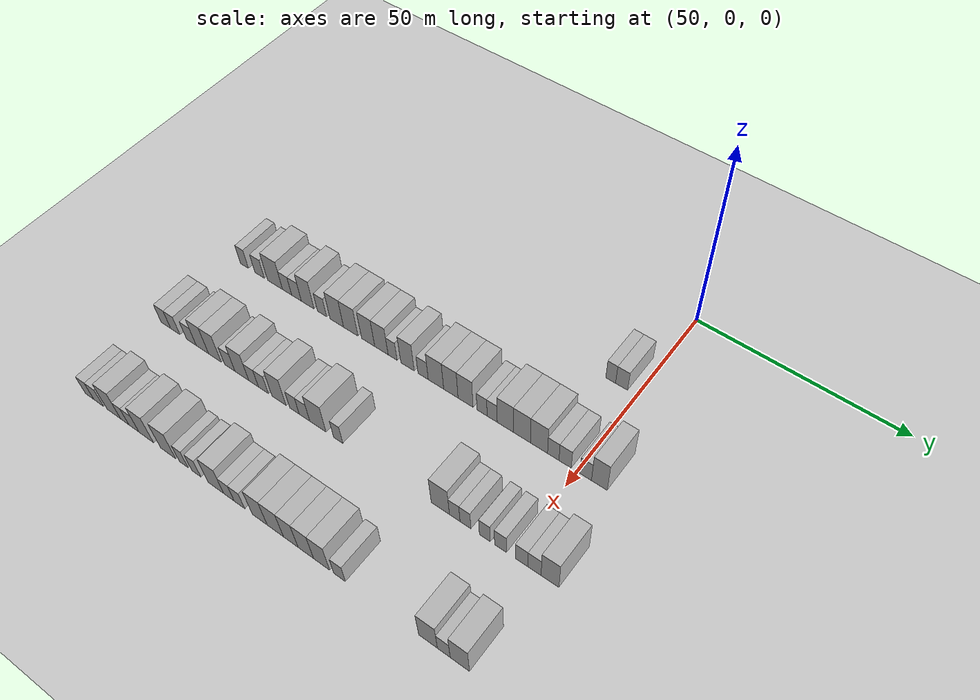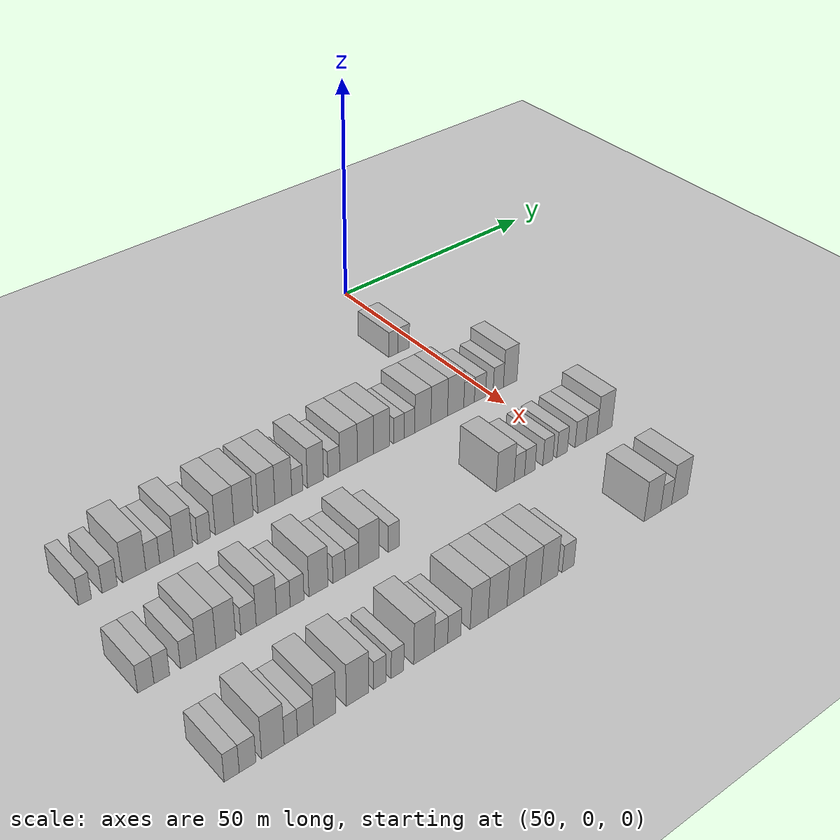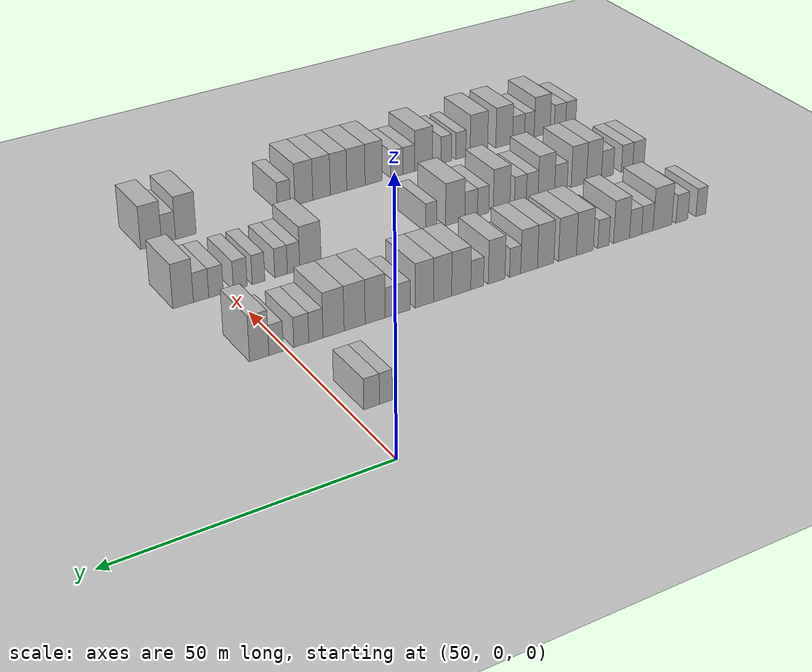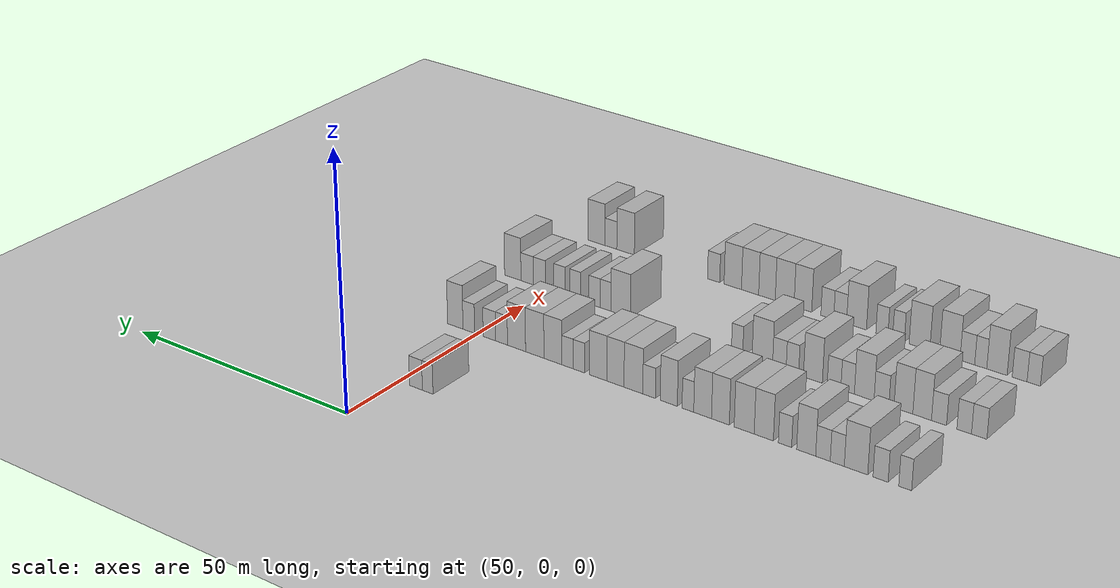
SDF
<sdf version="1.6">
 <world name="default">
  <include>
   <name>ground_plane_2</name>
   <uri>model://HANNAS_ground_plane</uri>
   <pose>100 0 0  0 0 0</pose>
  </include>
  <model name="building_488">
   <static>1</static>
   <pose>69.0000 -6.4480 0 0.000000 0.000000 0.000000</pose>
   <link name="link">
    <pose>0 0 3.00 0 0 0</pose>
    <collision name="collision"><geometry><box><size>10.0000 2.4102 6.0000</size></box></geometry></collision>
    <visual name="visual">
     <cast_shadows>0</cast_shadows>
     <geometry><box><size>10.0000 2.4102 6.0000</size></box></geometry>
     <material>
      <script>
       <uri>model://HANNAS_wall/materials/scripts</uri>
       <uri>model://HANNAS_wall/materials/textures</uri>
       <name>vrc/HANNAS_wall</name>
      </script>
     </material>
    </visual>
   </link>
  </model>
  <model name="building_489">
   <static>1</static>
   <pose>69.0000 -3.7724 0 0.000000 0.000000 0.000000</pose>
   <link name="link">
    <pose>0 0 3.00 0 0 0</pose>
    <collision name="collision"><geometry><box><size>10.0000 2.9410 6.0000</size></box></geometry></collision>
    <visual name="visual">
     <cast_shadows>0</cast_shadows>
     <geometry><box><size>10.0000 2.9410 6.0000</size></box></geometry>
     <material>
      <script>
       <uri>model://HANNAS_wall/materials/scripts</uri>
       <uri>model://HANNAS_wall/materials/textures</uri>
       <name>vrc/HANNAS_wall</name>
      </script>
     </material>
    </visual>
   </link>
  </model>
  <model name="building_650">
   <static>1</static>
   <pose>91.0000 -89.6249 0 0.000000 0.000000 0.000000</pose>
   <link name="link">
    <pose>0 0 3.00 0 0 0</pose>
    <collision name="collision"><geometry><box><size>10.0000 2.4065 6.0000</size></box></geometry></collision>
    <visual name="visual">
     <cast_shadows>0</cast_shadows>
     <geometry><box><size>10.0000 2.4065 6.0000</size></box></geometry>
     <material>
      <script>
       <uri>model://HANNAS_wall/materials/scripts</uri>
       <uri>model://HANNAS_wall/materials/textures</uri>
       <name>vrc/HANNAS_wall</name>
      </script>
     </material>
    </visual>
   </link>
  </model>
  <model name="building_651">
   <static>1</static>
   <pose>91.0000 -84.9941 0 0.000000 0.000000 0.000000</pose>
   <link name="link">
    <pose>0 0 3.00 0 0 0</pose>
    <collision name="collision"><geometry><box><size>10.0000 2.8552 6.0000</size></box></geometry></collision>
    <visual name="visual">
     <cast_shadows>0</cast_shadows>
     <geometry><box><size>10.0000 2.8552 6.0000</size></box></geometry>
     <material>
      <script>
       <uri>model://HANNAS_wall/materials/scripts</uri>
       <uri>model://HANNAS_wall/materials/textures</uri>
       <name>vrc/HANNAS_wall</name>
      </script>
     </material>
    </visual>
   </link>
  </model>
  <model name="building_652">
   <static>1</static>
   <pose>91.0000 -80.3249 0 0.000000 0.000000 0.000000</pose>
   <link name="link">
    <pose>0 0 4.50 0 0 0</pose>
    <collision name="collision"><geometry><box><size>10.0000 4.4831 9.0000</size></box></geometry></collision>
    <visual name="visual">
     <cast_shadows>0</cast_shadows>
     <geometry><box><size>10.0000 4.4831 9.0000</size></box></geometry>
     <material>
      <script>
       <uri>model://HANNAS_wall/materials/scripts</uri>
       <uri>model://HANNAS_wall/materials/textures</uri>
       <name>vrc/HANNAS_wall</name>
      </script>
     </material>
    </visual>
   </link>
  </model>
  <model name="building_653">
   <static>1</static>
   <pose>91.0000 -76.7258 0 0.000000 0.000000 0.000000</pose>
   <link name="link">
    <pose>0 0 3.00 0 0 0</pose>
    <collision name="collision"><geometry><box><size>10.0000 2.7152 6.0000</size></box></geometry></collision>
    <visual name="visual">
     <cast_shadows>0</cast_shadows>
     <geometry><box><size>10.0000 2.7152 6.0000</size></box></geometry>
     <material>
      <script>
       <uri>model://HANNAS_wall/materials/scripts</uri>
       <uri>model://HANNAS_wall/materials/textures</uri>
       <name>vrc/HANNAS_wall</name>
      </script>
     </material>
    </visual>
   </link>
  </model>
  <model name="building_654">
   <static>1</static>
   <pose>91.0000 -73.9480 0 0.000000 0.000000 0.000000</pose>
   <link name="link">
    <pose>0 0 3.00 0 0 0</pose>
    <collision name="collision"><geometry><box><size>10.0000 2.8404 6.0000</size></box></geometry></collision>
    <visual name="visual">
     <cast_shadows>0</cast_shadows>
     <geometry><box><size>10.0000 2.8404 6.0000</size></box></geometry>
     <material>
      <script>
       <uri>model://HANNAS_wall/materials/scripts</uri>
       <uri>model://HANNAS_wall/materials/textures</uri>
       <name>vrc/HANNAS_wall</name>
      </script>
     </material>
    </visual>
   </link>
  </model>
  <model name="building_655">
   <static>1</static>
   <pose>91.0000 -70.6602 0 0.000000 0.000000 0.000000</pose>
   <link name="link">
    <pose>0 0 4.50 0 0 0</pose>
    <collision name="collision"><geometry><box><size>10.0000 3.7353 9.0000</size></box></geometry></collision>
    <visual name="visual">
     <cast_shadows>0</cast_shadows>
     <geometry><box><size>10.0000 3.7353 9.0000</size></box></geometry>
     <material>
      <script>
       <uri>model://HANNAS_wall/materials/scripts</uri>
       <uri>model://HANNAS_wall/materials/textures</uri>
       <name>vrc/HANNAS_wall</name>
      </script>
     </material>
    </visual>
   </link>
  </model>
  <model name="building_656">
   <static>1</static>
   <pose>91.0000 -66.4795 0 0.000000 0.000000 0.000000</pose>
   <link name="link">
    <pose>0 0 3.00 0 0 0</pose>
    <collision name="collision"><geometry><box><size>10.0000 2.6261 6.0000</size></box></geometry></collision>
    <visual name="visual">
     <cast_shadows>0</cast_shadows>
     <geometry><box><size>10.0000 2.6261 6.0000</size></box></geometry>
     <material>
      <script>
       <uri>model://HANNAS_wall/materials/scripts</uri>
       <uri>model://HANNAS_wall/materials/textures</uri>
       <name>vrc/HANNAS_wall</name>
      </script>
     </material>
    </visual>
   </link>
  </model>
  <model name="building_657">
   <static>1</static>
   <pose>91.0000 -62.2388 0 0.000000 0.000000 0.000000</pose>
   <link name="link">
    <pose>0 0 4.50 0 0 0</pose>
    <collision name="collision"><geometry><box><size>10.0000 3.8552 9.0000</size></box></geometry></collision>
    <visual name="visual">
     <cast_shadows>0</cast_shadows>
     <geometry><box><size>10.0000 3.8552 9.0000</size></box></geometry>
     <material>
      <script>
       <uri>model://HANNAS_wall/materials/scripts</uri>
       <uri>model://HANNAS_wall/materials/textures</uri>
       <name>vrc/HANNAS_wall</name>
      </script>
     </material>
    </visual>
   </link>
  </model>
  <model name="building_658">
   <static>1</static>
   <pose>91.0000 -58.2820 0 0.000000 0.000000 0.000000</pose>
   <link name="link">
    <pose>0 0 4.50 0 0 0</pose>
    <collision name="collision"><geometry><box><size>10.0000 4.0585 9.0000</size></box></geometry></collision>
    <visual name="visual">
     <cast_shadows>0</cast_shadows>
     <geometry><box><size>10.0000 4.0585 9.0000</size></box></geometry>
     <material>
      <script>
       <uri>model://HANNAS_wall/materials/scripts</uri>
       <uri>model://HANNAS_wall/materials/textures</uri>
       <name>vrc/HANNAS_wall</name>
      </script>
     </material>
    </visual>
   </link>
  </model>
  <model name="building_659">
   <static>1</static>
   <pose>91.0000 -53.4203 0 0.000000 0.000000 0.000000</pose>
   <link name="link">
    <pose>0 0 4.50 0 0 0</pose>
    <collision name="collision"><geometry><box><size>10.0000 3.6650 9.0000</size></box></geometry></collision>
    <visual name="visual">
     <cast_shadows>0</cast_shadows>
     <geometry><box><size>10.0000 3.6650 9.0000</size></box></geometry>
     <material>
      <script>
       <uri>model://HANNAS_wall/materials/scripts</uri>
       <uri>model://HANNAS_wall/materials/textures</uri>
       <name>vrc/HANNAS_wall</name>
      </script>
     </material>
    </visual>
   </link>
  </model>
  <model name="building_660">
   <static>1</static>
   <pose>91.0000 -49.7429 0 0.000000 0.000000 0.000000</pose>
   <link name="link">
    <pose>0 0 4.50 0 0 0</pose>
    <collision name="collision"><geometry><box><size>10.0000 3.6897 9.0000</size></box></geometry></collision>
    <visual name="visual">
     <cast_shadows>0</cast_shadows>
     <geometry><box><size>10.0000 3.6897 9.0000</size></box></geometry>
     <material>
      <script>
       <uri>model://HANNAS_wall/materials/scripts</uri>
       <uri>model://HANNAS_wall/materials/textures</uri>
       <name>vrc/HANNAS_wall</name>
      </script>
     </material>
    </visual>
   </link>
  </model>
  <model name="building_661">
   <static>1</static>
   <pose>91.0000 -46.6797 0 0.000000 0.000000 0.000000</pose>
   <link name="link">
    <pose>0 0 3.00 0 0 0</pose>
    <collision name="collision"><geometry><box><size>10.0000 2.4366 6.0000</size></box></geometry></collision>
    <visual name="visual">
     <cast_shadows>0</cast_shadows>
     <geometry><box><size>10.0000 2.4366 6.0000</size></box></geometry>
     <material>
      <script>
       <uri>model://HANNAS_wall/materials/scripts</uri>
       <uri>model://HANNAS_wall/materials/textures</uri>
       <name>vrc/HANNAS_wall</name>
      </script>
     </material>
    </visual>
   </link>
  </model>
  <model name="building_662">
   <static>1</static>
   <pose>91.0000 -42.6531 0 0.000000 0.000000 0.000000</pose>
   <link name="link">
    <pose>0 0 4.50 0 0 0</pose>
    <collision name="collision"><geometry><box><size>10.0000 3.6165 9.0000</size></box></geometry></collision>
    <visual name="visual">
     <cast_shadows>0</cast_shadows>
     <geometry><box><size>10.0000 3.6165 9.0000</size></box></geometry>
     <material>
      <script>
       <uri>model://HANNAS_wall/materials/scripts</uri>
       <uri>model://HANNAS_wall/materials/textures</uri>
       <name>vrc/HANNAS_wall</name>
      </script>
     </material>
    </visual>
   </link>
  </model>
  <model name="building_663">
   <static>1</static>
   <pose>91.0000 -38.4862 0 0.000000 0.000000 0.000000</pose>
   <link name="link">
    <pose>0 0 3.00 0 0 0</pose>
    <collision name="collision"><geometry><box><size>10.0000 2.7173 6.0000</size></box></geometry></collision>
    <visual name="visual">
     <cast_shadows>0</cast_shadows>
     <geometry><box><size>10.0000 2.7173 6.0000</size></box></geometry>
     <material>
      <script>
       <uri>model://HANNAS_wall/materials/scripts</uri>
       <uri>model://HANNAS_wall/materials/textures</uri>
       <name>vrc/HANNAS_wall</name>
      </script>
     </material>
    </visual>
   </link>
  </model>
  <model name="building_664">
   <static>1</static>
   <pose>91.0000 -35.1050 0 0.000000 0.000000 0.000000</pose>
   <link name="link">
    <pose>0 0 4.50 0 0 0</pose>
    <collision name="collision"><geometry><box><size>10.0000 4.0452 9.0000</size></box></geometry></collision>
    <visual name="visual">
     <cast_shadows>0</cast_shadows>
     <geometry><box><size>10.0000 4.0452 9.0000</size></box></geometry>
     <material>
      <script>
       <uri>model://HANNAS_wall/materials/scripts</uri>
       <uri>model://HANNAS_wall/materials/textures</uri>
       <name>vrc/HANNAS_wall</name>
      </script>
     </material>
    </visual>
   </link>
  </model>
  <model name="building_665">
   <static>1</static>
   <pose>91.0000 -31.2090 0 0.000000 0.000000 0.000000</pose>
   <link name="link">
    <pose>0 0 4.50 0 0 0</pose>
    <collision name="collision"><geometry><box><size>10.0000 3.7467 9.0000</size></box></geometry></collision>
    <visual name="visual">
     <cast_shadows>0</cast_shadows>
     <geometry><box><size>10.0000 3.7467 9.0000</size></box></geometry>
     <material>
      <script>
       <uri>model://HANNAS_wall/materials/scripts</uri>
       <uri>model://HANNAS_wall/materials/textures</uri>
       <name>vrc/HANNAS_wall</name>
      </script>
     </material>
    </visual>
   </link>
  </model>
  <model name="building_666">
   <static>1</static>
   <pose>91.0000 -27.4064 0 0.000000 0.000000 0.000000</pose>
   <link name="link">
    <pose>0 0 4.50 0 0 0</pose>
    <collision name="collision"><geometry><box><size>10.0000 3.8585 9.0000</size></box></geometry></collision>
    <visual name="visual">
     <cast_shadows>0</cast_shadows>
     <geometry><box><size>10.0000 3.8585 9.0000</size></box></geometry>
     <material>
      <script>
       <uri>model://HANNAS_wall/materials/scripts</uri>
       <uri>model://HANNAS_wall/materials/textures</uri>
       <name>vrc/HANNAS_wall</name>
      </script>
     </material>
    </visual>
   </link>
  </model>
  <model name="building_667">
   <static>1</static>
   <pose>91.0000 -23.1904 0 0.000000 0.000000 0.000000</pose>
   <link name="link">
    <pose>0 0 3.00 0 0 0</pose>
    <collision name="collision"><geometry><box><size>10.0000 2.5735 6.0000</size></box></geometry></collision>
    <visual name="visual">
     <cast_shadows>0</cast_shadows>
     <geometry><box><size>10.0000 2.5735 6.0000</size></box></geometry>
     <material>
      <script>
       <uri>model://HANNAS_wall/materials/scripts</uri>
       <uri>model://HANNAS_wall/materials/textures</uri>
       <name>vrc/HANNAS_wall</name>
      </script>
     </material>
    </visual>
   </link>
  </model>
  <model name="building_668">
   <static>1</static>
   <pose>91.0000 -20.6383 0 0.000000 0.000000 0.000000</pose>
   <link name="link">
    <pose>0 0 3.00 0 0 0</pose>
    <collision name="collision"><geometry><box><size>10.0000 2.5307 6.0000</size></box></geometry></collision>
    <visual name="visual">
     <cast_shadows>0</cast_shadows>
     <geometry><box><size>10.0000 2.5307 6.0000</size></box></geometry>
     <material>
      <script>
       <uri>model://HANNAS_wall/materials/scripts</uri>
       <uri>model://HANNAS_wall/materials/textures</uri>
       <name>vrc/HANNAS_wall</name>
      </script>
     </material>
    </visual>
   </link>
  </model>
  <model name="building_669">
   <static>1</static>
   <pose>91.0000 -17.3683 0 0.000000 0.000000 0.000000</pose>
   <link name="link">
    <pose>0 0 4.50 0 0 0</pose>
    <collision name="collision"><geometry><box><size>10.0000 4.0093 9.0000</size></box></geometry></collision>
    <visual name="visual">
     <cast_shadows>0</cast_shadows>
     <geometry><box><size>10.0000 4.0093 9.0000</size></box></geometry>
     <material>
      <script>
       <uri>model://HANNAS_wall/materials/scripts</uri>
       <uri>model://HANNAS_wall/materials/textures</uri>
       <name>vrc/HANNAS_wall</name>
      </script>
     </material>
    </visual>
   </link>
  </model>
  <model name="building_670">
   <static>1</static>
   <pose>91.0000 -13.2743 0 0.000000 0.000000 0.000000</pose>
   <link name="link">
    <pose>0 0 4.50 0 0 0</pose>
    <collision name="collision"><geometry><box><size>10.0000 4.1787 9.0000</size></box></geometry></collision>
    <visual name="visual">
     <cast_shadows>0</cast_shadows>
     <geometry><box><size>10.0000 4.1787 9.0000</size></box></geometry>
     <material>
      <script>
       <uri>model://HANNAS_wall/materials/scripts</uri>
       <uri>model://HANNAS_wall/materials/textures</uri>
       <name>vrc/HANNAS_wall</name>
      </script>
     </material>
    </visual>
   </link>
  </model>
  <model name="building_671">
   <static>1</static>
   <pose>91.0000 -9.1041 0 0.000000 0.000000 0.000000</pose>
   <link name="link">
    <pose>0 0 4.50 0 0 0</pose>
    <collision name="collision"><geometry><box><size>10.0000 4.1616 9.0000</size></box></geometry></collision>
    <visual name="visual">
     <cast_shadows>0</cast_shadows>
     <geometry><box><size>10.0000 4.1616 9.0000</size></box></geometry>
     <material>
      <script>
       <uri>model://HANNAS_wall/materials/scripts</uri>
       <uri>model://HANNAS_wall/materials/textures</uri>
       <name>vrc/HANNAS_wall</name>
      </script>
     </material>
    </visual>
   </link>
  </model>
  <model name="building_672">
   <static>1</static>
   <pose>91.0000 -5.6515 0 0.000000 0.000000 0.000000</pose>
   <link name="link">
    <pose>0 0 3.00 0 0 0</pose>
    <collision name="collision"><geometry><box><size>10.0000 2.7437 6.0000</size></box></geometry></collision>
    <visual name="visual">
     <cast_shadows>0</cast_shadows>
     <geometry><box><size>10.0000 2.7437 6.0000</size></box></geometry>
     <material>
      <script>
       <uri>model://HANNAS_wall/materials/scripts</uri>
       <uri>model://HANNAS_wall/materials/textures</uri>
       <name>vrc/HANNAS_wall</name>
      </script>
     </material>
    </visual>
   </link>
  </model>
  <model name="building_673">
   <static>1</static>
   <pose>91.0000 -2.8227 0 0.000000 0.000000 0.000000</pose>
   <link name="link">
    <pose>0 0 3.00 0 0 0</pose>
    <collision name="collision"><geometry><box><size>10.0000 2.9139 6.0000</size></box></geometry></collision>
    <visual name="visual">
     <cast_shadows>0</cast_shadows>
     <geometry><box><size>10.0000 2.9139 6.0000</size></box></geometry>
     <material>
      <script>
       <uri>model://HANNAS_wall/materials/scripts</uri>
       <uri>model://HANNAS_wall/materials/textures</uri>
       <name>vrc/HANNAS_wall</name>
      </script>
     </material>
    </visual>
   </link>
  </model>
  <model name="building_674">
   <static>1</static>
   <pose>91.0000 2.0038 0 0.000000 0.000000 0.000000</pose>
   <link name="link">
    <pose>0 0 3.00 0 0 0</pose>
    <collision name="collision"><geometry><box><size>10.0000 2.7391 6.0000</size></box></geometry></collision>
    <visual name="visual">
     <cast_shadows>0</cast_shadows>
     <geometry><box><size>10.0000 2.7391 6.0000</size></box></geometry>
     <material>
      <script>
       <uri>model://HANNAS_wall/materials/scripts</uri>
       <uri>model://HANNAS_wall/materials/textures</uri>
       <name>vrc/HANNAS_wall</name>
      </script>
     </material>
    </visual>
   </link>
  </model>
  <model name="building_675">
   <static>1</static>
   <pose>91.0000 5.2040 0 0.000000 0.000000 0.000000</pose>
   <link name="link">
    <pose>0 0 4.50 0 0 0</pose>
    <collision name="collision"><geometry><box><size>10.0000 3.6614 9.0000</size></box></geometry></collision>
    <visual name="visual">
     <cast_shadows>0</cast_shadows>
     <geometry><box><size>10.0000 3.6614 9.0000</size></box></geometry>
     <material>
      <script>
       <uri>model://HANNAS_wall/materials/scripts</uri>
       <uri>model://HANNAS_wall/materials/textures</uri>
       <name>vrc/HANNAS_wall</name>
      </script>
     </material>
    </visual>
   </link>
  </model>
  <model name="building_840">
   <static>1</static>
   <pose>113.0000 -91.5246 0 0.000000 0.000000 0.000000</pose>
   <link name="link">
    <pose>0 0 3.00 0 0 0</pose>
    <collision name="collision"><geometry><box><size>10.0000 2.9326 6.0000</size></box></geometry></collision>
    <visual name="visual">
     <cast_shadows>0</cast_shadows>
     <geometry><box><size>10.0000 2.9326 6.0000</size></box></geometry>
     <material>
      <script>
       <uri>model://HANNAS_wall/materials/scripts</uri>
       <uri>model://HANNAS_wall/materials/textures</uri>
       <name>vrc/HANNAS_wall</name>
      </script>
     </material>
    </visual>
   </link>
  </model>
  <model name="building_841">
   <static>1</static>
   <pose>113.0000 -88.6587 0 0.000000 0.000000 0.000000</pose>
   <link name="link">
    <pose>0 0 3.00 0 0 0</pose>
    <collision name="collision"><geometry><box><size>10.0000 2.7993 6.0000</size></box></geometry></collision>
    <visual name="visual">
     <cast_shadows>0</cast_shadows>
     <geometry><box><size>10.0000 2.7993 6.0000</size></box></geometry>
     <material>
      <script>
       <uri>model://HANNAS_wall/materials/scripts</uri>
       <uri>model://HANNAS_wall/materials/textures</uri>
       <name>vrc/HANNAS_wall</name>
      </script>
     </material>
    </visual>
   </link>
  </model>
  <model name="building_842">
   <static>1</static>
   <pose>113.0000 -83.7989 0 0.000000 0.000000 0.000000</pose>
   <link name="link">
    <pose>0 0 3.00 0 0 0</pose>
    <collision name="collision"><geometry><box><size>10.0000 2.9202 6.0000</size></box></geometry></collision>
    <visual name="visual">
     <cast_shadows>0</cast_shadows>
     <geometry><box><size>10.0000 2.9202 6.0000</size></box></geometry>
     <material>
      <script>
       <uri>model://HANNAS_wall/materials/scripts</uri>
       <uri>model://HANNAS_wall/materials/textures</uri>
       <name>vrc/HANNAS_wall</name>
      </script>
     </material>
    </visual>
   </link>
  </model>
  <model name="building_843">
   <static>1</static>
   <pose>113.0000 -80.5098 0 0.000000 0.000000 0.000000</pose>
   <link name="link">
    <pose>0 0 4.50 0 0 0</pose>
    <collision name="collision"><geometry><box><size>10.0000 3.6580 9.0000</size></box></geometry></collision>
    <visual name="visual">
     <cast_shadows>0</cast_shadows>
     <geometry><box><size>10.0000 3.6580 9.0000</size></box></geometry>
     <material>
      <script>
       <uri>model://HANNAS_wall/materials/scripts</uri>
       <uri>model://HANNAS_wall/materials/textures</uri>
       <name>vrc/HANNAS_wall</name>
      </script>
     </material>
    </visual>
   </link>
  </model>
  <model name="building_844">
   <static>1</static>
   <pose>113.0000 -76.8177 0 0.000000 0.000000 0.000000</pose>
   <link name="link">
    <pose>0 0 4.50 0 0 0</pose>
    <collision name="collision"><geometry><box><size>10.0000 3.7262 9.0000</size></box></geometry></collision>
    <visual name="visual">
     <cast_shadows>0</cast_shadows>
     <geometry><box><size>10.0000 3.7262 9.0000</size></box></geometry>
     <material>
      <script>
       <uri>model://HANNAS_wall/materials/scripts</uri>
       <uri>model://HANNAS_wall/materials/textures</uri>
       <name>vrc/HANNAS_wall</name>
      </script>
     </material>
    </visual>
   </link>
  </model>
  <model name="building_845">
   <static>1</static>
   <pose>113.0000 -72.4673 0 0.000000 0.000000 0.000000</pose>
   <link name="link">
    <pose>0 0 3.00 0 0 0</pose>
    <collision name="collision"><geometry><box><size>10.0000 2.9744 6.0000</size></box></geometry></collision>
    <visual name="visual">
     <cast_shadows>0</cast_shadows>
     <geometry><box><size>10.0000 2.9744 6.0000</size></box></geometry>
     <material>
      <script>
       <uri>model://HANNAS_wall/materials/scripts</uri>
       <uri>model://HANNAS_wall/materials/textures</uri>
       <name>vrc/HANNAS_wall</name>
      </script>
     </material>
    </visual>
   </link>
  </model>
  <model name="building_846">
   <static>1</static>
   <pose>113.0000 -68.9987 0 0.000000 0.000000 0.000000</pose>
   <link name="link">
    <pose>0 0 4.50 0 0 0</pose>
    <collision name="collision"><geometry><box><size>10.0000 3.9628 9.0000</size></box></geometry></collision>
    <visual name="visual">
     <cast_shadows>0</cast_shadows>
     <geometry><box><size>10.0000 3.9628 9.0000</size></box></geometry>
     <material>
      <script>
       <uri>model://HANNAS_wall/materials/scripts</uri>
       <uri>model://HANNAS_wall/materials/textures</uri>
       <name>vrc/HANNAS_wall</name>
      </script>
     </material>
    </visual>
   </link>
  </model>
  <model name="building_847">
   <static>1</static>
   <pose>113.0000 -65.6395 0 0.000000 0.000000 0.000000</pose>
   <link name="link">
    <pose>0 0 3.00 0 0 0</pose>
    <collision name="collision"><geometry><box><size>10.0000 2.7556 6.0000</size></box></geometry></collision>
    <visual name="visual">
     <cast_shadows>0</cast_shadows>
     <geometry><box><size>10.0000 2.7556 6.0000</size></box></geometry>
     <material>
      <script>
       <uri>model://HANNAS_wall/materials/scripts</uri>
       <uri>model://HANNAS_wall/materials/textures</uri>
       <name>vrc/HANNAS_wall</name>
      </script>
     </material>
    </visual>
   </link>
  </model>
  <model name="building_848">
   <static>1</static>
   <pose>113.0000 -62.8694 0 0.000000 0.000000 0.000000</pose>
   <link name="link">
    <pose>0 0 3.00 0 0 0</pose>
    <collision name="collision"><geometry><box><size>10.0000 2.7847 6.0000</size></box></geometry></collision>
    <visual name="visual">
     <cast_shadows>0</cast_shadows>
     <geometry><box><size>10.0000 2.7847 6.0000</size></box></geometry>
     <material>
      <script>
       <uri>model://HANNAS_wall/materials/scripts</uri>
       <uri>model://HANNAS_wall/materials/textures</uri>
       <name>vrc/HANNAS_wall</name>
      </script>
     </material>
    </visual>
   </link>
  </model>
  <model name="building_849">
   <static>1</static>
   <pose>113.0000 -58.5174 0 0.000000 0.000000 0.000000</pose>
   <link name="link">
    <pose>0 0 4.50 0 0 0</pose>
    <collision name="collision"><geometry><box><size>10.0000 3.9193 9.0000</size></box></geometry></collision>
    <visual name="visual">
     <cast_shadows>0</cast_shadows>
     <geometry><box><size>10.0000 3.9193 9.0000</size></box></geometry>
     <material>
      <script>
       <uri>model://HANNAS_wall/materials/scripts</uri>
       <uri>model://HANNAS_wall/materials/textures</uri>
       <name>vrc/HANNAS_wall</name>
      </script>
     </material>
    </visual>
   </link>
  </model>
  <model name="building_850">
   <static>1</static>
   <pose>113.0000 -54.2472 0 0.000000 0.000000 0.000000</pose>
   <link name="link">
    <pose>0 0 3.00 0 0 0</pose>
    <collision name="collision"><geometry><box><size>10.0000 2.6211 6.0000</size></box></geometry></collision>
    <visual name="visual">
     <cast_shadows>0</cast_shadows>
     <geometry><box><size>10.0000 2.6211 6.0000</size></box></geometry>
     <material>
      <script>
       <uri>model://HANNAS_wall/materials/scripts</uri>
       <uri>model://HANNAS_wall/materials/textures</uri>
       <name>vrc/HANNAS_wall</name>
      </script>
     </material>
    </visual>
   </link>
  </model>
  <model name="building_851">
   <static>1</static>
   <pose>113.0000 -51.5075 0 0.000000 0.000000 0.000000</pose>
   <link name="link">
    <pose>0 0 3.00 0 0 0</pose>
    <collision name="collision"><geometry><box><size>10.0000 2.8582 6.0000</size></box></geometry></collision>
    <visual name="visual">
     <cast_shadows>0</cast_shadows>
     <geometry><box><size>10.0000 2.8582 6.0000</size></box></geometry>
     <material>
      <script>
       <uri>model://HANNAS_wall/materials/scripts</uri>
       <uri>model://HANNAS_wall/materials/textures</uri>
       <name>vrc/HANNAS_wall</name>
      </script>
     </material>
    </visual>
   </link>
  </model>
  <model name="building_852">
   <static>1</static>
   <pose>113.0000 -47.8989 0 0.000000 0.000000 0.000000</pose>
   <link name="link">
    <pose>0 0 4.50 0 0 0</pose>
    <collision name="collision"><geometry><box><size>10.0000 4.3590 9.0000</size></box></geometry></collision>
    <visual name="visual">
     <cast_shadows>0</cast_shadows>
     <geometry><box><size>10.0000 4.3590 9.0000</size></box></geometry>
     <material>
      <script>
       <uri>model://HANNAS_wall/materials/scripts</uri>
       <uri>model://HANNAS_wall/materials/textures</uri>
       <name>vrc/HANNAS_wall</name>
      </script>
     </material>
    </visual>
   </link>
  </model>
  <model name="building_853">
   <static>1</static>
   <pose>113.0000 -42.4967 0 0.000000 0.000000 0.000000</pose>
   <link name="link">
    <pose>0 0 3.00 0 0 0</pose>
    <collision name="collision"><geometry><box><size>10.0000 2.4454 6.0000</size></box></geometry></collision>
    <visual name="visual">
     <cast_shadows>0</cast_shadows>
     <geometry><box><size>10.0000 2.4454 6.0000</size></box></geometry>
     <material>
      <script>
       <uri>model://HANNAS_wall/materials/scripts</uri>
       <uri>model://HANNAS_wall/materials/textures</uri>
       <name>vrc/HANNAS_wall</name>
      </script>
     </material>
    </visual>
   </link>
  </model>
  <model name="building_854">
   <static>1</static>
   <pose>113.0000 -16.6333 0 0.000000 0.000000 0.000000</pose>
   <link name="link">
    <pose>0 0 4.50 0 0 0</pose>
    <collision name="collision"><geometry><box><size>10.0000 4.4271 9.0000</size></box></geometry></collision>
    <visual name="visual">
     <cast_shadows>0</cast_shadows>
     <geometry><box><size>10.0000 4.4271 9.0000</size></box></geometry>
     <material>
      <script>
       <uri>model://HANNAS_wall/materials/scripts</uri>
       <uri>model://HANNAS_wall/materials/textures</uri>
       <name>vrc/HANNAS_wall</name>
      </script>
     </material>
    </visual>
   </link>
  </model>
  <model name="building_855">
   <static>1</static>
   <pose>113.0000 -13.1447 0 0.000000 0.000000 0.000000</pose>
   <link name="link">
    <pose>0 0 3.00 0 0 0</pose>
    <collision name="collision"><geometry><box><size>10.0000 2.5502 6.0000</size></box></geometry></collision>
    <visual name="visual">
     <cast_shadows>0</cast_shadows>
     <geometry><box><size>10.0000 2.5502 6.0000</size></box></geometry>
     <material>
      <script>
       <uri>model://HANNAS_wall/materials/scripts</uri>
       <uri>model://HANNAS_wall/materials/textures</uri>
       <name>vrc/HANNAS_wall</name>
      </script>
     </material>
    </visual>
   </link>
  </model>
  <model name="building_856">
   <static>1</static>
   <pose>113.0000 -10.5804 0 0.000000 0.000000 0.000000</pose>
   <link name="link">
    <pose>0 0 3.00 0 0 0</pose>
    <collision name="collision"><geometry><box><size>10.0000 2.5785 6.0000</size></box></geometry></collision>
    <visual name="visual">
     <cast_shadows>0</cast_shadows>
     <geometry><box><size>10.0000 2.5785 6.0000</size></box></geometry>
     <material>
      <script>
       <uri>model://HANNAS_wall/materials/scripts</uri>
       <uri>model://HANNAS_wall/materials/textures</uri>
       <name>vrc/HANNAS_wall</name>
      </script>
     </material>
    </visual>
   </link>
  </model>
  <model name="building_857">
   <static>1</static>
   <pose>113.0000 -6.0092 0 0.000000 0.000000 0.000000</pose>
   <link name="link">
    <pose>0 0 3.00 0 0 0</pose>
    <collision name="collision"><geometry><box><size>10.0000 2.5640 6.0000</size></box></geometry></collision>
    <visual name="visual">
     <cast_shadows>0</cast_shadows>
     <geometry><box><size>10.0000 2.5640 6.0000</size></box></geometry>
     <material>
      <script>
       <uri>model://HANNAS_wall/materials/scripts</uri>
       <uri>model://HANNAS_wall/materials/textures</uri>
       <name>vrc/HANNAS_wall</name>
      </script>
     </material>
    </visual>
   </link>
  </model>
  <model name="building_858">
   <static>1</static>
   <pose>113.0000 -2.3519 0 0.000000 0.000000 0.000000</pose>
   <link name="link">
    <pose>0 0 3.00 0 0 0</pose>
    <collision name="collision"><geometry><box><size>10.0000 2.7504 6.0000</size></box></geometry></collision>
    <visual name="visual">
     <cast_shadows>0</cast_shadows>
     <geometry><box><size>10.0000 2.7504 6.0000</size></box></geometry>
     <material>
      <script>
       <uri>model://HANNAS_wall/materials/scripts</uri>
       <uri>model://HANNAS_wall/materials/textures</uri>
       <name>vrc/HANNAS_wall</name>
      </script>
     </material>
    </visual>
   </link>
  </model>
  <model name="building_859">
   <static>1</static>
   <pose>113.0000 2.4577 0 0.000000 0.000000 0.000000</pose>
   <link name="link">
    <pose>0 0 3.00 0 0 0</pose>
    <collision name="collision"><geometry><box><size>10.0000 2.8689 6.0000</size></box></geometry></collision>
    <visual name="visual">
     <cast_shadows>0</cast_shadows>
     <geometry><box><size>10.0000 2.8689 6.0000</size></box></geometry>
     <material>
      <script>
       <uri>model://HANNAS_wall/materials/scripts</uri>
       <uri>model://HANNAS_wall/materials/textures</uri>
       <name>vrc/HANNAS_wall</name>
      </script>
     </material>
    </visual>
   </link>
  </model>
  <model name="building_860">
   <static>1</static>
   <pose>113.0000 5.3865 0 0.000000 0.000000 0.000000</pose>
   <link name="link">
    <pose>0 0 3.00 0 0 0</pose>
    <collision name="collision"><geometry><box><size>10.0000 2.9887 6.0000</size></box></geometry></collision>
    <visual name="visual">
     <cast_shadows>0</cast_shadows>
     <geometry><box><size>10.0000 2.9887 6.0000</size></box></geometry>
     <material>
      <script>
       <uri>model://HANNAS_wall/materials/scripts</uri>
       <uri>model://HANNAS_wall/materials/textures</uri>
       <name>vrc/HANNAS_wall</name>
      </script>
     </material>
    </visual>
   </link>
  </model>
  <model name="building_861">
   <static>1</static>
   <pose>113.0000 8.8742 0 0.000000 0.000000 0.000000</pose>
   <link name="link">
    <pose>0 0 4.50 0 0 0</pose>
    <collision name="collision"><geometry><box><size>10.0000 3.9867 9.0000</size></box></geometry></collision>
    <visual name="visual">
     <cast_shadows>0</cast_shadows>
     <geometry><box><size>10.0000 3.9867 9.0000</size></box></geometry>
     <material>
      <script>
       <uri>model://HANNAS_wall/materials/scripts</uri>
       <uri>model://HANNAS_wall/materials/textures</uri>
       <name>vrc/HANNAS_wall</name>
      </script>
     </material>
    </visual>
   </link>
  </model>
  <model name="building_1031">
   <static>1</static>
   <pose>135.0000 -90.6435 0 0.000000 0.000000 0.000000</pose>
   <link name="link">
    <pose>0 0 3.00 0 0 0</pose>
    <collision name="collision"><geometry><box><size>10.0000 2.6156 6.0000</size></box></geometry></collision>
    <visual name="visual">
     <cast_shadows>0</cast_shadows>
     <geometry><box><size>10.0000 2.6156 6.0000</size></box></geometry>
     <material>
      <script>
       <uri>model://HANNAS_wall/materials/scripts</uri>
       <uri>model://HANNAS_wall/materials/textures</uri>
       <name>vrc/HANNAS_wall</name>
      </script>
     </material>
    </visual>
   </link>
  </model>
  <model name="building_1032">
   <static>1</static>
   <pose>135.0000 -87.8767 0 0.000000 0.000000 0.000000</pose>
   <link name="link">
    <pose>0 0 3.00 0 0 0</pose>
    <collision name="collision"><geometry><box><size>10.0000 2.9180 6.0000</size></box></geometry></collision>
    <visual name="visual">
     <cast_shadows>0</cast_shadows>
     <geometry><box><size>10.0000 2.9180 6.0000</size></box></geometry>
     <material>
      <script>
       <uri>model://HANNAS_wall/materials/scripts</uri>
       <uri>model://HANNAS_wall/materials/textures</uri>
       <name>vrc/HANNAS_wall</name>
      </script>
     </material>
    </visual>
   </link>
  </model>
  <model name="building_1033">
   <static>1</static>
   <pose>135.0000 -83.3951 0 0.000000 0.000000 0.000000</pose>
   <link name="link">
    <pose>0 0 4.50 0 0 0</pose>
    <collision name="collision"><geometry><box><size>10.0000 4.0452 9.0000</size></box></geometry></collision>
    <visual name="visual">
     <cast_shadows>0</cast_shadows>
     <geometry><box><size>10.0000 4.0452 9.0000</size></box></geometry>
     <material>
      <script>
       <uri>model://HANNAS_wall/materials/scripts</uri>
       <uri>model://HANNAS_wall/materials/textures</uri>
       <name>vrc/HANNAS_wall</name>
      </script>
     </material>
    </visual>
   </link>
  </model>
  <model name="building_1034">
   <static>1</static>
   <pose>135.0000 -80.1602 0 0.000000 0.000000 0.000000</pose>
   <link name="link">
    <pose>0 0 3.00 0 0 0</pose>
    <collision name="collision"><geometry><box><size>10.0000 2.4247 6.0000</size></box></geometry></collision>
    <visual name="visual">
     <cast_shadows>0</cast_shadows>
     <geometry><box><size>10.0000 2.4247 6.0000</size></box></geometry>
     <material>
      <script>
       <uri>model://HANNAS_wall/materials/scripts</uri>
       <uri>model://HANNAS_wall/materials/textures</uri>
       <name>vrc/HANNAS_wall</name>
      </script>
     </material>
    </visual>
   </link>
  </model>
  <model name="building_1035">
   <static>1</static>
   <pose>135.0000 -77.4684 0 0.000000 0.000000 0.000000</pose>
   <link name="link">
    <pose>0 0 3.00 0 0 0</pose>
    <collision name="collision"><geometry><box><size>10.0000 2.9588 6.0000</size></box></geometry></collision>
    <visual name="visual">
     <cast_shadows>0</cast_shadows>
     <geometry><box><size>10.0000 2.9588 6.0000</size></box></geometry>
     <material>
      <script>
       <uri>model://HANNAS_wall/materials/scripts</uri>
       <uri>model://HANNAS_wall/materials/textures</uri>
       <name>vrc/HANNAS_wall</name>
      </script>
     </material>
    </visual>
   </link>
  </model>
  <model name="building_1036">
   <static>1</static>
   <pose>135.0000 -73.9077 0 0.000000 0.000000 0.000000</pose>
   <link name="link">
    <pose>0 0 4.50 0 0 0</pose>
    <collision name="collision"><geometry><box><size>10.0000 4.1626 9.0000</size></box></geometry></collision>
    <visual name="visual">
     <cast_shadows>0</cast_shadows>
     <geometry><box><size>10.0000 4.1626 9.0000</size></box></geometry>
     <material>
      <script>
       <uri>model://HANNAS_wall/materials/scripts</uri>
       <uri>model://HANNAS_wall/materials/textures</uri>
       <name>vrc/HANNAS_wall</name>
      </script>
     </material>
    </visual>
   </link>
  </model>
  <model name="building_1037">
   <static>1</static>
   <pose>135.0000 -67.6841 0 0.000000 0.000000 0.000000</pose>
   <link name="link">
    <pose>0 0 4.50 0 0 0</pose>
    <collision name="collision"><geometry><box><size>10.0000 4.2846 9.0000</size></box></geometry></collision>
    <visual name="visual">
     <cast_shadows>0</cast_shadows>
     <geometry><box><size>10.0000 4.2846 9.0000</size></box></geometry>
     <material>
      <script>
       <uri>model://HANNAS_wall/materials/scripts</uri>
       <uri>model://HANNAS_wall/materials/textures</uri>
       <name>vrc/HANNAS_wall</name>
      </script>
     </material>
    </visual>
   </link>
  </model>
  <model name="building_1038">
   <static>1</static>
   <pose>135.0000 -63.3238 0 0.000000 0.000000 0.000000</pose>
   <link name="link">
    <pose>0 0 3.00 0 0 0</pose>
    <collision name="collision"><geometry><box><size>10.0000 2.4360 6.0000</size></box></geometry></collision>
    <visual name="visual">
     <cast_shadows>0</cast_shadows>
     <geometry><box><size>10.0000 2.4360 6.0000</size></box></geometry>
     <material>
      <script>
       <uri>model://HANNAS_wall/materials/scripts</uri>
       <uri>model://HANNAS_wall/materials/textures</uri>
       <name>vrc/HANNAS_wall</name>
      </script>
     </material>
    </visual>
   </link>
  </model>
  <model name="building_1039">
   <static>1</static>
   <pose>135.0000 -59.8453 0 0.000000 0.000000 0.000000</pose>
   <link name="link">
    <pose>0 0 3.00 0 0 0</pose>
    <collision name="collision"><geometry><box><size>10.0000 2.5209 6.0000</size></box></geometry></collision>
    <visual name="visual">
     <cast_shadows>0</cast_shadows>
     <geometry><box><size>10.0000 2.5209 6.0000</size></box></geometry>
     <material>
      <script>
       <uri>model://HANNAS_wall/materials/scripts</uri>
       <uri>model://HANNAS_wall/materials/textures</uri>
       <name>vrc/HANNAS_wall</name>
      </script>
     </material>
    </visual>
   </link>
  </model>
  <model name="building_1040">
   <static>1</static>
   <pose>135.0000 -54.4687 0 0.000000 0.000000 0.000000</pose>
   <link name="link">
    <pose>0 0 4.50 0 0 0</pose>
    <collision name="collision"><geometry><box><size>10.0000 4.2323 9.0000</size></box></geometry></collision>
    <visual name="visual">
     <cast_shadows>0</cast_shadows>
     <geometry><box><size>10.0000 4.2323 9.0000</size></box></geometry>
     <material>
      <script>
       <uri>model://HANNAS_wall/materials/scripts</uri>
       <uri>model://HANNAS_wall/materials/textures</uri>
       <name>vrc/HANNAS_wall</name>
      </script>
     </material>
    </visual>
   </link>
  </model>
  <model name="building_1041">
   <static>1</static>
   <pose>135.0000 -50.9685 0 0.000000 0.000000 0.000000</pose>
   <link name="link">
    <pose>0 0 3.00 0 0 0</pose>
    <collision name="collision"><geometry><box><size>10.0000 2.7682 6.0000</size></box></geometry></collision>
    <visual name="visual">
     <cast_shadows>0</cast_shadows>
     <geometry><box><size>10.0000 2.7682 6.0000</size></box></geometry>
     <material>
      <script>
       <uri>model://HANNAS_wall/materials/scripts</uri>
       <uri>model://HANNAS_wall/materials/textures</uri>
       <name>vrc/HANNAS_wall</name>
      </script>
     </material>
    </visual>
   </link>
  </model>
  <model name="building_1042">
   <static>1</static>
   <pose>135.0000 -48.1914 0 0.000000 0.000000 0.000000</pose>
   <link name="link">
    <pose>0 0 3.00 0 0 0</pose>
    <collision name="collision"><geometry><box><size>10.0000 2.7860 6.0000</size></box></geometry></collision>
    <visual name="visual">
     <cast_shadows>0</cast_shadows>
     <geometry><box><size>10.0000 2.7860 6.0000</size></box></geometry>
     <material>
      <script>
       <uri>model://HANNAS_wall/materials/scripts</uri>
       <uri>model://HANNAS_wall/materials/textures</uri>
       <name>vrc/HANNAS_wall</name>
      </script>
     </material>
    </visual>
   </link>
  </model>
  <model name="building_1043">
   <static>1</static>
   <pose>135.0000 -42.8625 0 0.000000 0.000000 0.000000</pose>
   <link name="link">
    <pose>0 0 4.50 0 0 0</pose>
    <collision name="collision"><geometry><box><size>10.0000 3.8717 9.0000</size></box></geometry></collision>
    <visual name="visual">
     <cast_shadows>0</cast_shadows>
     <geometry><box><size>10.0000 3.8717 9.0000</size></box></geometry>
     <material>
      <script>
       <uri>model://HANNAS_wall/materials/scripts</uri>
       <uri>model://HANNAS_wall/materials/textures</uri>
       <name>vrc/HANNAS_wall</name>
      </script>
     </material>
    </visual>
   </link>
  </model>
  <model name="building_1044">
   <static>1</static>
   <pose>135.0000 -38.8420 0 0.000000 0.000000 0.000000</pose>
   <link name="link">
    <pose>0 0 4.50 0 0 0</pose>
    <collision name="collision"><geometry><box><size>10.0000 4.1694 9.0000</size></box></geometry></collision>
    <visual name="visual">
     <cast_shadows>0</cast_shadows>
     <geometry><box><size>10.0000 4.1694 9.0000</size></box></geometry>
     <material>
      <script>
       <uri>model://HANNAS_wall/materials/scripts</uri>
       <uri>model://HANNAS_wall/materials/textures</uri>
       <name>vrc/HANNAS_wall</name>
      </script>
     </material>
    </visual>
   </link>
  </model>
  <model name="building_1045">
   <static>1</static>
   <pose>135.0000 -34.9039 0 0.000000 0.000000 0.000000</pose>
   <link name="link">
    <pose>0 0 4.50 0 0 0</pose>
    <collision name="collision"><geometry><box><size>10.0000 3.7067 9.0000</size></box></geometry></collision>
    <visual name="visual">
     <cast_shadows>0</cast_shadows>
     <geometry><box><size>10.0000 3.7067 9.0000</size></box></geometry>
     <material>
      <script>
       <uri>model://HANNAS_wall/materials/scripts</uri>
       <uri>model://HANNAS_wall/materials/textures</uri>
       <name>vrc/HANNAS_wall</name>
      </script>
     </material>
    </visual>
   </link>
  </model>
  <model name="building_1046">
   <static>1</static>
   <pose>135.0000 -31.1151 0 0.000000 0.000000 0.000000</pose>
   <link name="link">
    <pose>0 0 4.50 0 0 0</pose>
    <collision name="collision"><geometry><box><size>10.0000 3.8709 9.0000</size></box></geometry></collision>
    <visual name="visual">
     <cast_shadows>0</cast_shadows>
     <geometry><box><size>10.0000 3.8709 9.0000</size></box></geometry>
     <material>
      <script>
       <uri>model://HANNAS_wall/materials/scripts</uri>
       <uri>model://HANNAS_wall/materials/textures</uri>
       <name>vrc/HANNAS_wall</name>
      </script>
     </material>
    </visual>
   </link>
  </model>
  <model name="building_1047">
   <static>1</static>
   <pose>135.0000 -27.2026 0 0.000000 0.000000 0.000000</pose>
   <link name="link">
    <pose>0 0 4.50 0 0 0</pose>
    <collision name="collision"><geometry><box><size>10.0000 3.9541 9.0000</size></box></geometry></collision>
    <visual name="visual">
     <cast_shadows>0</cast_shadows>
     <geometry><box><size>10.0000 3.9541 9.0000</size></box></geometry>
     <material>
      <script>
       <uri>model://HANNAS_wall/materials/scripts</uri>
       <uri>model://HANNAS_wall/materials/textures</uri>
       <name>vrc/HANNAS_wall</name>
      </script>
     </material>
    </visual>
   </link>
  </model>
  <model name="building_1048">
   <static>1</static>
   <pose>135.0000 -22.8197 0 0.000000 0.000000 0.000000</pose>
   <link name="link">
    <pose>0 0 3.00 0 0 0</pose>
    <collision name="collision"><geometry><box><size>10.0000 2.8117 6.0000</size></box></geometry></collision>
    <visual name="visual">
     <cast_shadows>0</cast_shadows>
     <geometry><box><size>10.0000 2.8117 6.0000</size></box></geometry>
     <material>
      <script>
       <uri>model://HANNAS_wall/materials/scripts</uri>
       <uri>model://HANNAS_wall/materials/textures</uri>
       <name>vrc/HANNAS_wall</name>
      </script>
     </material>
    </visual>
   </link>
  </model>
  <model name="building_1049">
   <static>1</static>
   <pose>135.0000 -2.0718 0 0.000000 0.000000 0.000000</pose>
   <link name="link">
    <pose>0 0 4.50 0 0 0</pose>
    <collision name="collision"><geometry><box><size>10.0000 4.2280 9.0000</size></box></geometry></collision>
    <visual name="visual">
     <cast_shadows>0</cast_shadows>
     <geometry><box><size>10.0000 4.2280 9.0000</size></box></geometry>
     <material>
      <script>
       <uri>model://HANNAS_wall/materials/scripts</uri>
       <uri>model://HANNAS_wall/materials/textures</uri>
       <name>vrc/HANNAS_wall</name>
      </script>
     </material>
    </visual>
   </link>
  </model>
  <model name="building_1050">
   <static>1</static>
   <pose>135.0000 1.4757 0 0.000000 0.000000 0.000000</pose>
   <link name="link">
    <pose>0 0 3.00 0 0 0</pose>
    <collision name="collision"><geometry><box><size>10.0000 2.8669 6.0000</size></box></geometry></collision>
    <visual name="visual">
     <cast_shadows>0</cast_shadows>
     <geometry><box><size>10.0000 2.8669 6.0000</size></box></geometry>
     <material>
      <script>
       <uri>model://HANNAS_wall/materials/scripts</uri>
       <uri>model://HANNAS_wall/materials/textures</uri>
       <name>vrc/HANNAS_wall</name>
      </script>
     </material>
    </visual>
   </link>
  </model>
  <model name="building_1051">
   <static>1</static>
   <pose>135.0000 5.0222 0 0.000000 0.000000 0.000000</pose>
   <link name="link">
    <pose>0 0 4.50 0 0 0</pose>
    <collision name="collision"><geometry><box><size>10.0000 4.2262 9.0000</size></box></geometry></collision>
    <visual name="visual">
     <cast_shadows>0</cast_shadows>
     <geometry><box><size>10.0000 4.2262 9.0000</size></box></geometry>
     <material>
      <script>
       <uri>model://HANNAS_wall/materials/scripts</uri>
       <uri>model://HANNAS_wall/materials/textures</uri>
       <name>vrc/HANNAS_wall</name>
      </script>
     </material>
    </visual>
   </link>
  </model>
 </world>
</sdf>
